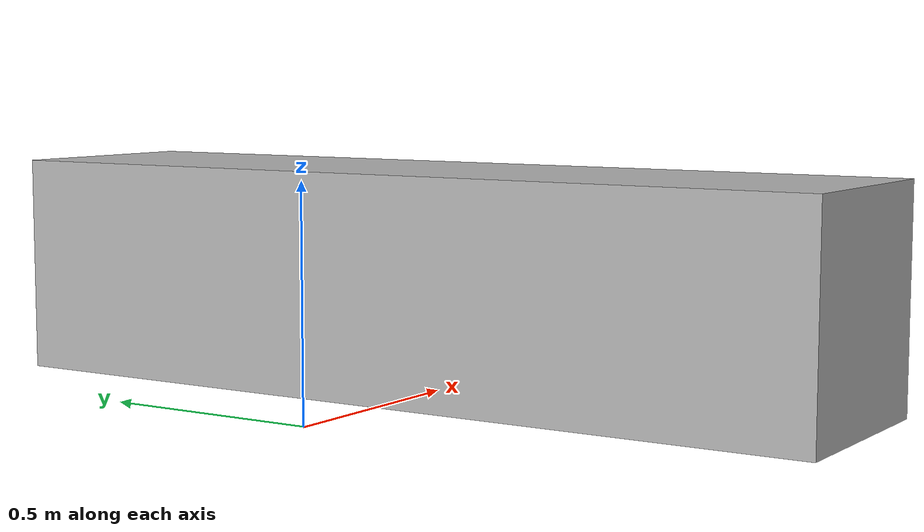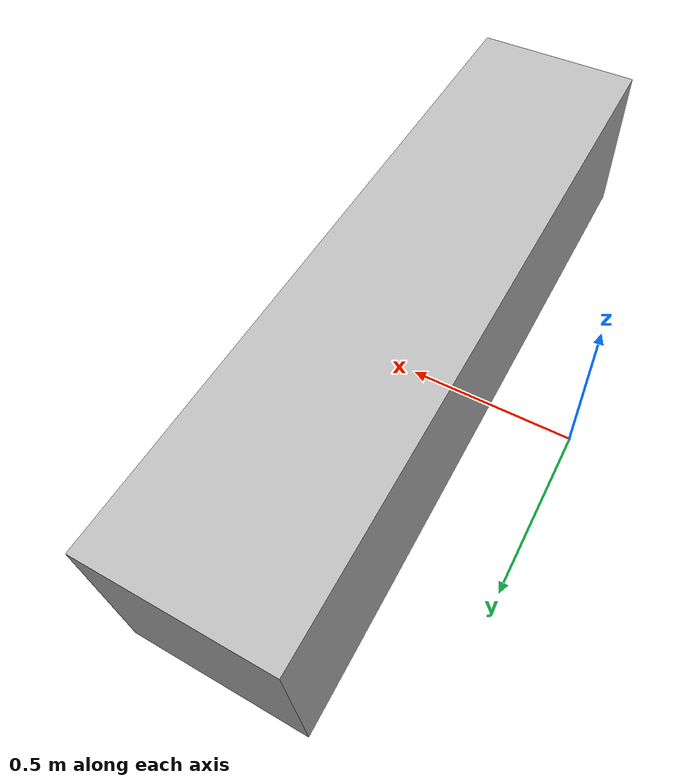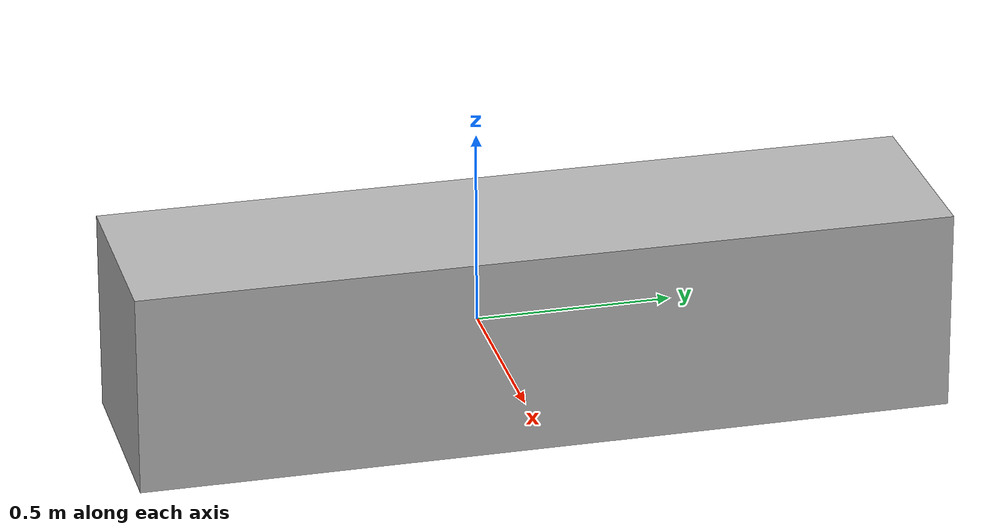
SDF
<?xml version="1.0" ?>
<sdf version="1.7">
  <model name="simple_box">
    <pose>0.5 0.0 0.25 0 0 0</pose>
    <static>true</static>
    <link name="box_link">

      <collision name="collision">
        <geometry>
          <box>
            <size>0.5 2 0.5</size>
          </box>
        </geometry>

        <surface>

          <contact>
             <ode>
                <kp>1000000000</kp>
                <kd>100</kd>
                <soft_cfm> 0.00001 </soft_cfm>
             </ode>
             <bullet>
                <!-- default -0.01 -->
             </bullet>
          </contact>

          <friction>
          </friction>
        </surface>

      </collision>
      <visual name="visual">
        <cast_shadows>false</cast_shadows>
        <transparency>0</transparency>
        <geometry>
          <box>
            <size>0.5 2 0.5</size>
          </box>
        </geometry>
      </visual>
    </link>
  </model>
</sdf>
